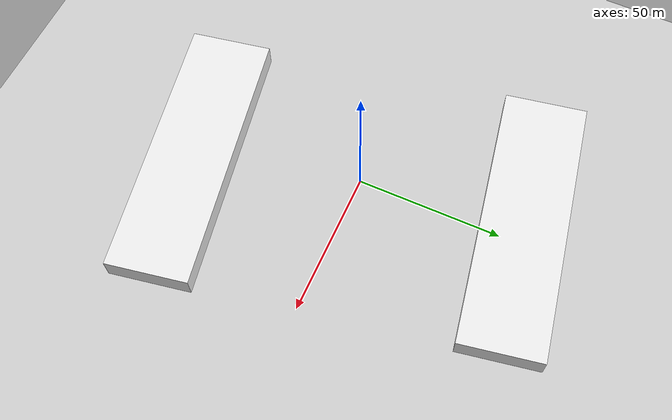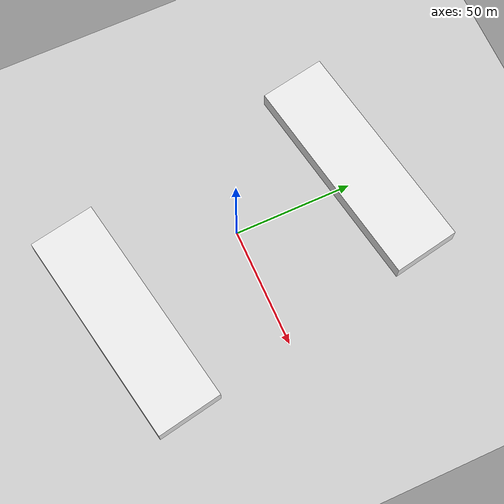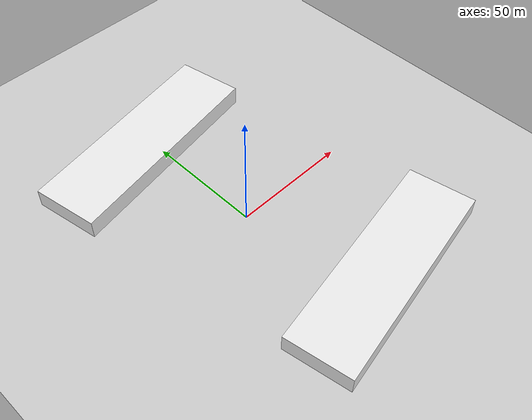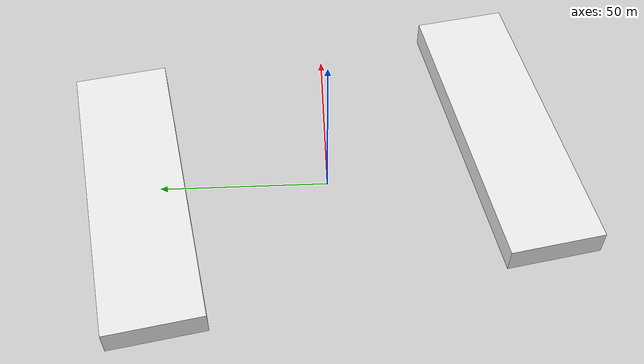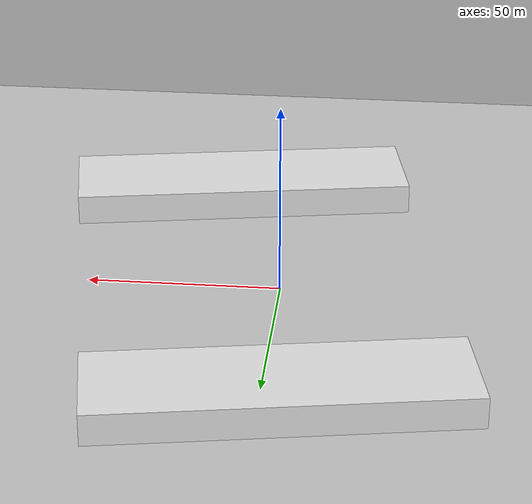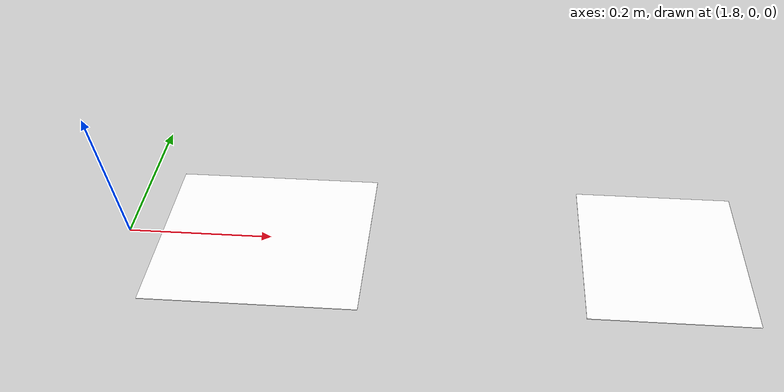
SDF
<?xml version="1.0" ?>
<sdf version="1.6">
  <world name="default">
    <spherical_coordinates>
      <surface_model>EARTH_WGS84</surface_model>
      <latitude_deg>42.3097</latitude_deg>
      <longitude_deg>-71.0959</longitude_deg>
      <elevation>141.0</elevation>
    </spherical_coordinates>

    <gravity>0 0 -9.8066</gravity>
    <magnetic_field>6.0e-6 2.3e-5 -4.2e-5</magnetic_field>
    <physics name='default_physics' default='0' type='ode'>
      <ode>
        <solver>
          <type>quick</type>
          <iters>10</iters>
          <sor>1.3</sor>
          <use_dynamic_moi_rescaling>0</use_dynamic_moi_rescaling>
        </solver>
        <constraints>
          <cfm>0</cfm>
          <erp>0.2</erp>
          <contact_max_correcting_vel>100</contact_max_correcting_vel>
          <contact_surface_layer>0.001</contact_surface_layer>
        </constraints>
      </ode>
      <max_step_size>0.004</max_step_size>
      <real_time_factor>1</real_time_factor>
      <real_time_update_rate>250</real_time_update_rate>
    </physics>

    <include>
      <uri>model://sun</uri>
    </include>

    <include>
      <uri>model://environment/franklin_park</uri>
    </include>

    <include>
      <name>aruco_landing_markers</name>
      <uri>model://fiducials/aruco_landing_markers</uri>
      <pose frame=''>2.25 0 0 0 0 1.5708</pose>
      <static>1</static>
    </include>

  </world>
</sdf>

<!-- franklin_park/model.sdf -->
<sdf version="1.6">
  <model name="franklin_park">
    <static>true</static>
    <link name="ground">
      <collision name="collision">
        <geometry>
          <plane>
            <normal>0 0 1</normal>
            <size>5000 5000</size>
          </plane>
        </geometry>
        <surface>
          <friction>
            <ode>
              <mu>100</mu>
              <mu2>50</mu2>
            </ode>
          </friction>
        </surface>
      </collision>

      <visual name="ground">
        <pose>0 0 -0.1 0 0 -1.57</pose>
        <cast_shadows>false</cast_shadows>
        <geometry>
          <plane>
            <normal>0 0 1</normal>
            <size>200 200</size>
          </plane>
        </geometry>
        <material>
          <script>
            <uri>model://environment/franklin_park/materials/scripts</uri>
            <uri>model://environment/franklin_park/materials/textures</uri>
            <name>FranklinPark</name>
          </script>
        </material>
      </visual>
    </link>

    <include>
      <name>bleachers_0</name>
      <uri>model://environment/stadium_box</uri>
      <pose frame=''>-5 56 -0.1 0 0 0.18</pose>
    </include>

    <include>
      <name>bleachers_1</name>
      <uri>model://environment/stadium_box</uri>
      <pose frame=''>16 -55 -0.1 0 0 0.18</pose>
    </include>
  </model>
</sdf>

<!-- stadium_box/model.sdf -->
<sdf version='1.6'>
  <model name='stadium_box'>
    <link name='link_0'>
      <pose frame=''>0 0 0 0 -0 0</pose>

      <visual name='visual'>
        <pose frame=''>0 0 4 0 -0 0</pose>
        <geometry>
          <box>
            <size>92 28 8</size>
          </box>
        </geometry>
        <material>
          <lighting>1</lighting>
          <script>
            <uri>file://media/materials/scripts/gazebo.material</uri>
            <name>Gazebo/White</name>
          </script>
          <shader type='pixel'>
            <normal_map>__default__</normal_map>
          </shader>
          <ambient>0.3 0.3 0.3 1</ambient>
          <diffuse>0.7 0.7 0.7 1</diffuse>
          <specular>0.01 0.01 0.01 1</specular>
          <emissive>0 0 0 1</emissive>
        </material>
        <transparency>0</transparency>
        <cast_shadows>1</cast_shadows>
      </visual>
      <collision name='collision'>
        <laser_retro>0</laser_retro>
        <max_contacts>10</max_contacts>
        <pose frame=''>0 0 4 0 -0 0</pose>
        <geometry>
          <box>
            <size>92 28 8</size>
          </box>
        </geometry>
      </collision>
    </link>
    <static>1</static>
  </model>
</sdf>

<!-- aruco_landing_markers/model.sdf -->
<sdf version='1.5'>
  <model name='aruco_landing_markers'>
    <link name='base_link'>
    </link>
    <include>
      <name>aruco_array_v2</name>
      <uri>model://fiducials/aruco_array_v2</uri>
      <pose frame=''>0 0.259 0 0 0 0</pose>
    </include>
    <joint name="aruco_array_v2_joint" type="fixed">
      <child>aruco_array_v2::marker</child>
      <parent>base_link</parent>
    </joint>

    <include>
      <name>aruco_6x6_4_v2</name>
      <uri>model://fiducials/aruco_6x6_4_v2</uri>
      <pose frame=''>0 -0.289 0 0 0 0</pose>
    </include>
    <joint name="aruco_6x6_4_v2_joint" type="fixed">
      <child>aruco_6x6_4_v2::marker</child>
      <parent>base_link</parent>
    </joint>
  </model>
</sdf>

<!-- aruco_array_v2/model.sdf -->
<sdf version='1.5'>
  <model name='aruco_array_v2'>

    <link name='marker'>
      <pose frame=''>0 0 0 0 0 0</pose>
      <inertial>
        <pose>0 0 0 0 0 0</pose>
        <mass>0.015</mass>
        <inertia>
          <ixx>0</ixx>
          <ixy>0</ixy>
          <ixz>0</ixz>
          <iyy>0</iyy>
          <iyz>0</iyz>
          <izz>0</izz>
        </inertia>
      </inertial>
      <visual name='visual'>
        <geometry>
          <box>
            <size>0.2300 0.2896 1e-5</size>
          </box>
        </geometry>
        <material>
          <script>
            <uri>model://fiducials/aruco_array_v2/materials/scripts</uri>
            <uri>model://fiducials/aruco_array_v2/materials/textures</uri>
            <name>ArucoArrayV2/Marker</name>
          </script>
          <ambient>1 1 1 1</ambient>
          <diffuse>1 1 1 1</diffuse>
          <specular>0 0 0 1</specular>
          <emissive>1 1 1 0</emissive>
          <shader type='vertex'>
            <normal_map>__default__</normal_map>
          </shader>
        </material>
        <pose frame=''>0 0 0 0 -0 0</pose>
        <cast_shadows>1</cast_shadows>
        <transparency>0</transparency>
      </visual>
      <collision name='collision'>
        <laser_retro>0</laser_retro>
        <max_contacts>10</max_contacts>
        <pose frame=''>0 0 0 0 -0 0</pose>
        <geometry>
          <box>
            <size>0.2300 0.2896 1e-05</size>
          </box>
        </geometry>
      </collision>
    </link>

    <link name='marker_pad'>
      <pose frame='marker'>0 0 -1e-3 0 -0 0</pose>
      <visual name='visual'>
        <geometry>
          <box>
            <size>0.2300 0.2896 1e-5</size>
          </box>
        </geometry>
        <material>
          <lighting>1</lighting>
          <script>
            <uri>file://media/materials/scripts/gazebo.material</uri>
            <name>Gazebo/White</name>
          </script>
          <ambient>0.3 0.3 0.3 1</ambient>
          <diffuse>0.7 0.7 0.7 1</diffuse>
          <specular>0.01 0.01 0.01 1</specular>
          <emissive>1 1 1 0</emissive>
          <shader type='vertex'>
            <normal_map>__default__</normal_map>
          </shader>
        </material>
        <cast_shadows>1</cast_shadows>
        <transparency>0</transparency>
      </visual>
      <collision name='collision'>
        <laser_retro>0</laser_retro>
        <max_contacts>10</max_contacts>
        <pose frame=''>0 0 0 0 -0 0</pose>
        <geometry>
          <box>
            <size>0.2300 0.2896 1e-5</size>
          </box>
        </geometry>
      </collision>
    </link>

    <joint name='marker_JOINT_marker_pad' type='fixed'>
      <parent>marker</parent>
      <child>marker_pad</child>
      <pose frame=''>0 0 0 0 -0 0</pose>
      <axis>
        <xyz>0 0 1</xyz>
        <limit>
          <upper>0</upper>
          <lower>0</lower>
        </limit>
      </axis>
    </joint>

    <allow_auto_disable>1</allow_auto_disable>

  </model>
</sdf>

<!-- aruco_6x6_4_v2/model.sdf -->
<sdf version='1.5'>
  <model name='aruco_6x6_4_v2'>

    <link name='marker'>
      <pose frame=''>0 0 0 0 0 0</pose>
      <inertial>
        <pose>0 0 0 0 0 0</pose>
        <mass>0.015</mass>
        <inertia>
          <ixx>0</ixx>
          <ixy>0</ixy>
          <ixz>0</ixz>
          <iyy>0</iyy>
          <iyz>0</iyz>
          <izz>0</izz>
        </inertia>
      </inertial>
      <visual name='visual'>
        <geometry>
          <box>
            <size>0.2200 0.2200 1e-5</size>
          </box>
        </geometry>
        <material>
          <script>
            <uri>model://fiducials/aruco_6x6_4/materials/scripts</uri>
            <uri>model://fiducials/aruco_6x6_4/materials/textures</uri>
            <name>ArucoMarker4/Marker</name>
          </script>
          <ambient>1 1 1 1</ambient>
          <diffuse>1 1 1 1</diffuse>
          <specular>0 0 0 1</specular>
          <emissive>1 1 1 0</emissive>
          <shader type='vertex'>
            <normal_map>__default__</normal_map>
          </shader>
        </material>
        <pose frame=''>0 0 0 0 -0 0</pose>
        <cast_shadows>1</cast_shadows>
        <transparency>0</transparency>
      </visual>
      <collision name='collision'>
        <laser_retro>0</laser_retro>
        <max_contacts>10</max_contacts>
        <pose frame=''>0 0 0 0 -0 0</pose>
        <geometry>
          <box>
            <size>0.2200 0.2200 1e-05</size>
          </box>
        </geometry>
      </collision>
    </link>

    <link name='marker_pad'>
      <pose frame='marker'>0 0 -1e-3 0 -0 0</pose>
      <visual name='visual'>
        <geometry>
          <box>
            <size>0.2200 0.2200 1e-5</size>
          </box>
        </geometry>
        <material>
          <lighting>1</lighting>
          <script>
            <uri>file://media/materials/scripts/gazebo.material</uri>
            <name>Gazebo/White</name>
          </script>
          <ambient>0.3 0.3 0.3 1</ambient>
          <diffuse>0.7 0.7 0.7 1</diffuse>
          <specular>0.01 0.01 0.01 1</specular>
          <emissive>1 1 1 0</emissive>
          <shader type='vertex'>
            <normal_map>__default__</normal_map>
          </shader>
        </material>
        <cast_shadows>1</cast_shadows>
        <transparency>0</transparency>
      </visual>
      <collision name='collision'>
        <laser_retro>0</laser_retro>
        <max_contacts>10</max_contacts>
        <pose frame=''>0 0 0 0 -0 0</pose>
        <geometry>
          <box>
            <size>0.2200 0.2200 1e-5</size>
          </box>
        </geometry>
      </collision>
    </link>

    <joint name='marker_JOINT_marker_pad' type='fixed'>
      <parent>marker</parent>
      <child>marker_pad</child>
      <pose frame=''>0 0 0 0 -0 0</pose>
      <axis>
        <xyz>0 0 1</xyz>
        <limit>
          <upper>0</upper>
          <lower>0</lower>
        </limit>
      </axis>
    </joint>

    <allow_auto_disable>1</allow_auto_disable>

  </model>
</sdf>
